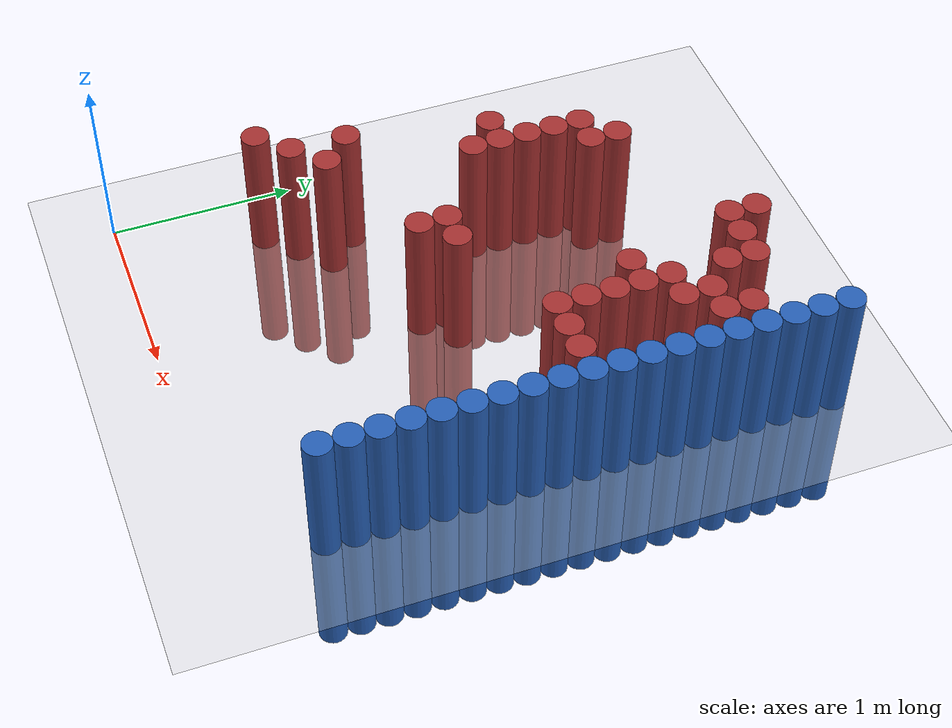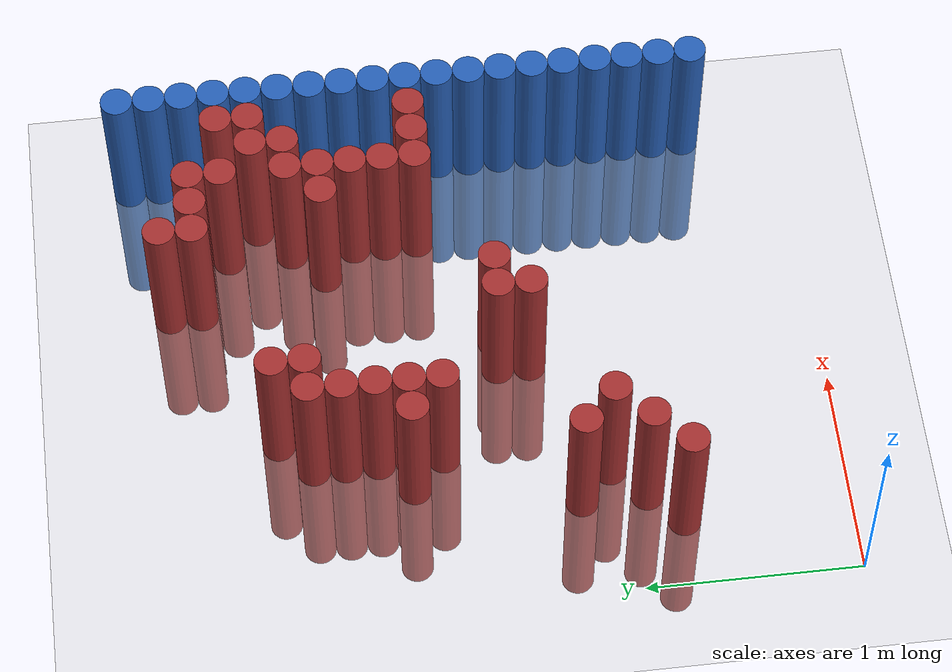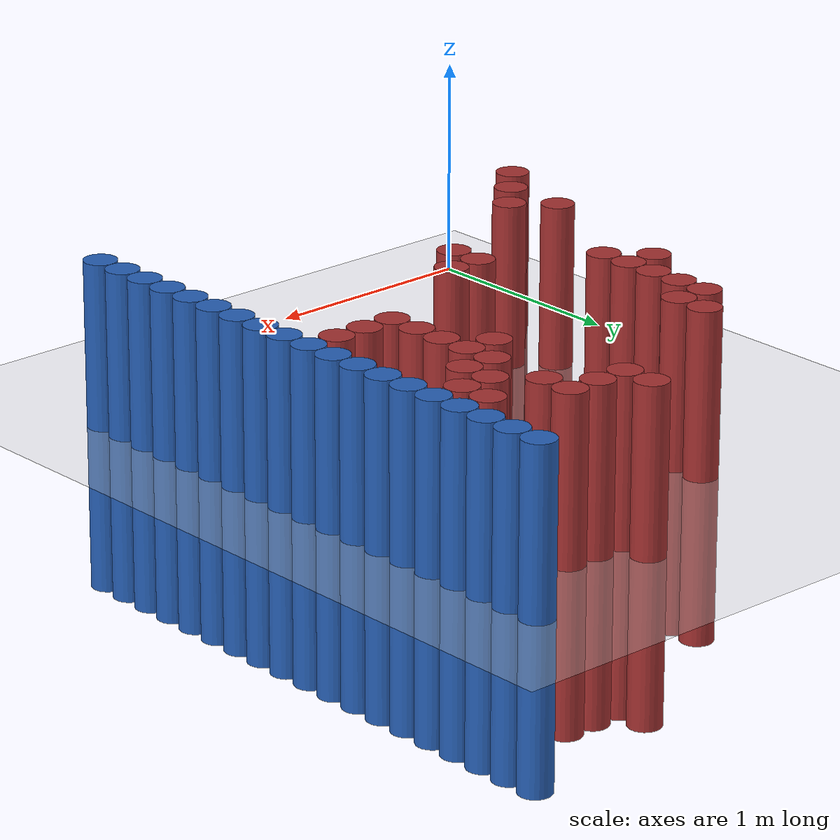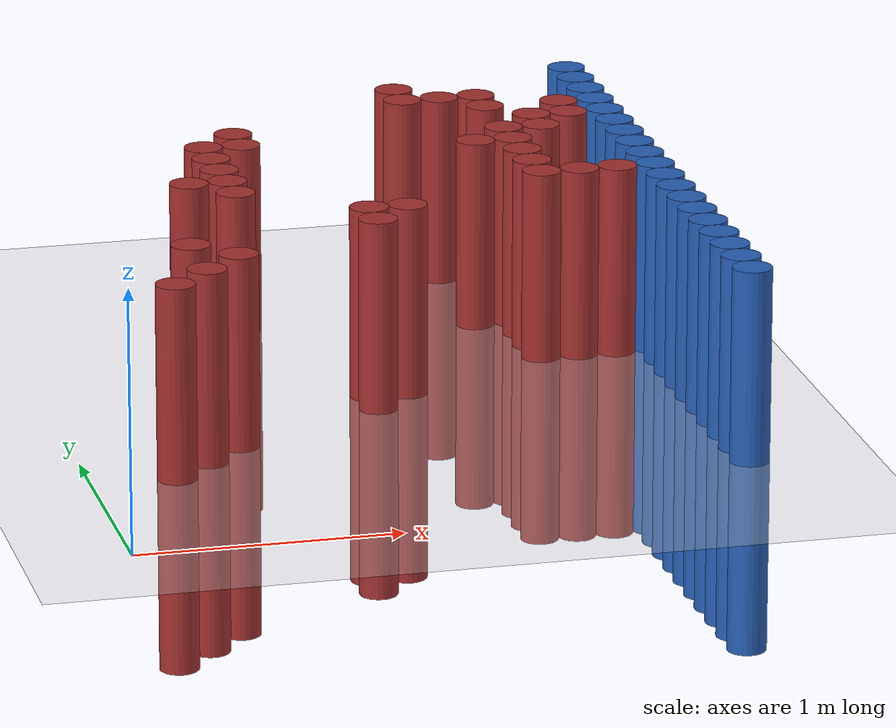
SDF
<sdf version="1.6">
 <world name="default">
  <model name="ground_plane">
   <static>1</static>
   <link name="link">
    <collision name="collision">
     <geometry><plane><normal>0 0 1</normal><size>100 100</size></plane></geometry>
     <surface><friction><ode><mu>100</mu><mu2>50</mu2></ode></friction></surface>
    </collision>
    <visual name="visual">
     <cast_shadows>0</cast_shadows>
     <geometry><plane><normal>0 0 1</normal><size>100 100</size></plane></geometry>
     <material>
      <script><uri>file://media/materials/scripts/gazebo.material</uri><name>Gazebo/Grey</name></script>
     </material>
    </visual>
   </link>
  </model>
  <model name="unit_cylinder_155">
   <static>1</static>
   <pose>0.325000 0.775000 0.000000 0.000000 0.000000 0.000000</pose>
   <link name="link">
    <inertial>
     <mass>1</mass>
     <inertia><ixx>0.145833</ixx><ixy>0</ixy><ixz>0</ixz><iyy>0.145833</iyy><iyz>0</iyz><izz>0.125</izz></inertia>
    </inertial>
    <collision name="collision">
     <geometry><cylinder><radius>0.075000</radius><length>1.5</length></cylinder></geometry>
    </collision>
    <visual name="visual">
     <geometry><cylinder><radius>0.075000</radius><length>1.5</length></cylinder></geometry>
     <material>
      <ambient>0.648000 0.192000 0.192000 1</ambient>
      <diffuse>0.648000 0.192000 0.192000 1</diffuse>
     </material>
     <material>
      <script><name>Gazebo/Grey</name><uri>file://media/materials/scripts/gazebo.material</uri></script>
     </material>
    </visual>
   </link>
  </model>
  <model name="unit_cylinder_163">
   <static>1</static>
   <pose>0.475000 0.925000 0.000000 0.000000 0.000000 0.000000</pose>
   <link name="link">
    <inertial>
     <mass>1</mass>
     <inertia><ixx>0.145833</ixx><ixy>0</ixy><ixz>0</ixz><iyy>0.145833</iyy><iyz>0</iyz><izz>0.125</izz></inertia>
    </inertial>
    <collision name="collision">
     <geometry><cylinder><radius>0.075000</radius><length>1.5</length></cylinder></geometry>
    </collision>
    <visual name="visual">
     <geometry><cylinder><radius>0.075000</radius><length>1.5</length></cylinder></geometry>
     <material>
      <ambient>0.648000 0.192000 0.192000 1</ambient>
      <diffuse>0.648000 0.192000 0.192000 1</diffuse>
     </material>
     <material>
      <script><name>Gazebo/Grey</name><uri>file://media/materials/scripts/gazebo.material</uri></script>
     </material>
    </visual>
   </link>
  </model>
  <model name="unit_cylinder_164">
   <static>1</static>
   <pose>0.475000 1.225000 0.000000 0.000000 0.000000 0.000000</pose>
   <link name="link">
    <inertial>
     <mass>1</mass>
     <inertia><ixx>0.145833</ixx><ixy>0</ixy><ixz>0</ixz><iyy>0.145833</iyy><iyz>0</iyz><izz>0.125</izz></inertia>
    </inertial>
    <collision name="collision">
     <geometry><cylinder><radius>0.075000</radius><length>1.5</length></cylinder></geometry>
    </collision>
    <visual name="visual">
     <geometry><cylinder><radius>0.075000</radius><length>1.5</length></cylinder></geometry>
     <material>
      <ambient>0.648000 0.192000 0.192000 1</ambient>
      <diffuse>0.648000 0.192000 0.192000 1</diffuse>
     </material>
     <material>
      <script><name>Gazebo/Grey</name><uri>file://media/materials/scripts/gazebo.material</uri></script>
     </material>
    </visual>
   </link>
  </model>
  <model name="unit_cylinder_170">
   <static>1</static>
   <pose>0.625000 1.075000 0.000000 0.000000 0.000000 0.000000</pose>
   <link name="link">
    <inertial>
     <mass>1</mass>
     <inertia><ixx>0.145833</ixx><ixy>0</ixy><ixz>0</ixz><iyy>0.145833</iyy><iyz>0</iyz><izz>0.125</izz></inertia>
    </inertial>
    <collision name="collision">
     <geometry><cylinder><radius>0.075000</radius><length>1.5</length></cylinder></geometry>
    </collision>
    <visual name="visual">
     <geometry><cylinder><radius>0.075000</radius><length>1.5</length></cylinder></geometry>
     <material>
      <ambient>0.648000 0.192000 0.192000 1</ambient>
      <diffuse>0.648000 0.192000 0.192000 1</diffuse>
     </material>
     <material>
      <script><name>Gazebo/Grey</name><uri>file://media/materials/scripts/gazebo.material</uri></script>
     </material>
    </visual>
   </link>
  </model>
  <model name="unit_cylinder_171">
   <static>1</static>
   <pose>0.625000 1.975000 0.000000 0.000000 0.000000 0.000000</pose>
   <link name="link">
    <inertial>
     <mass>1</mass>
     <inertia><ixx>0.145833</ixx><ixy>0</ixy><ixz>0</ixz><iyy>0.145833</iyy><iyz>0</iyz><izz>0.125</izz></inertia>
    </inertial>
    <collision name="collision">
     <geometry><cylinder><radius>0.075000</radius><length>1.5</length></cylinder></geometry>
    </collision>
    <visual name="visual">
     <geometry><cylinder><radius>0.075000</radius><length>1.5</length></cylinder></geometry>
     <material>
      <ambient>0.648000 0.192000 0.192000 1</ambient>
      <diffuse>0.648000 0.192000 0.192000 1</diffuse>
     </material>
     <material>
      <script><name>Gazebo/Grey</name><uri>file://media/materials/scripts/gazebo.material</uri></script>
     </material>
    </visual>
   </link>
  </model>
  <model name="unit_cylinder_176">
   <static>1</static>
   <pose>0.775000 1.825000 0.000000 0.000000 0.000000 0.000000</pose>
   <link name="link">
    <inertial>
     <mass>1</mass>
     <inertia><ixx>0.145833</ixx><ixy>0</ixy><ixz>0</ixz><iyy>0.145833</iyy><iyz>0</iyz><izz>0.125</izz></inertia>
    </inertial>
    <collision name="collision">
     <geometry><cylinder><radius>0.075000</radius><length>1.5</length></cylinder></geometry>
    </collision>
    <visual name="visual">
     <geometry><cylinder><radius>0.075000</radius><length>1.5</length></cylinder></geometry>
     <material>
      <ambient>0.648000 0.192000 0.192000 1</ambient>
      <diffuse>0.648000 0.192000 0.192000 1</diffuse>
     </material>
     <material>
      <script><name>Gazebo/Grey</name><uri>file://media/materials/scripts/gazebo.material</uri></script>
     </material>
    </visual>
   </link>
  </model>
  <model name="unit_cylinder_177">
   <static>1</static>
   <pose>0.775000 1.975000 0.000000 0.000000 0.000000 0.000000</pose>
   <link name="link">
    <inertial>
     <mass>1</mass>
     <inertia><ixx>0.145833</ixx><ixy>0</ixy><ixz>0</ixz><iyy>0.145833</iyy><iyz>0</iyz><izz>0.125</izz></inertia>
    </inertial>
    <collision name="collision">
     <geometry><cylinder><radius>0.075000</radius><length>1.5</length></cylinder></geometry>
    </collision>
    <visual name="visual">
     <geometry><cylinder><radius>0.075000</radius><length>1.5</length></cylinder></geometry>
     <material>
      <ambient>0.648000 0.192000 0.192000 1</ambient>
      <diffuse>0.648000 0.192000 0.192000 1</diffuse>
     </material>
     <material>
      <script><name>Gazebo/Grey</name><uri>file://media/materials/scripts/gazebo.material</uri></script>
     </material>
    </visual>
   </link>
  </model>
  <model name="unit_cylinder_178">
   <static>1</static>
   <pose>0.775000 2.125000 0.000000 0.000000 0.000000 0.000000</pose>
   <link name="link">
    <inertial>
     <mass>1</mass>
     <inertia><ixx>0.145833</ixx><ixy>0</ixy><ixz>0</ixz><iyy>0.145833</iyy><iyz>0</iyz><izz>0.125</izz></inertia>
    </inertial>
    <collision name="collision">
     <geometry><cylinder><radius>0.075000</radius><length>1.5</length></cylinder></geometry>
    </collision>
    <visual name="visual">
     <geometry><cylinder><radius>0.075000</radius><length>1.5</length></cylinder></geometry>
     <material>
      <ambient>0.648000 0.192000 0.192000 1</ambient>
      <diffuse>0.648000 0.192000 0.192000 1</diffuse>
     </material>
     <material>
      <script><name>Gazebo/Grey</name><uri>file://media/materials/scripts/gazebo.material</uri></script>
     </material>
    </visual>
   </link>
  </model>
  <model name="unit_cylinder_179">
   <static>1</static>
   <pose>0.775000 2.275000 0.000000 0.000000 0.000000 0.000000</pose>
   <link name="link">
    <inertial>
     <mass>1</mass>
     <inertia><ixx>0.145833</ixx><ixy>0</ixy><ixz>0</ixz><iyy>0.145833</iyy><iyz>0</iyz><izz>0.125</izz></inertia>
    </inertial>
    <collision name="collision">
     <geometry><cylinder><radius>0.075000</radius><length>1.5</length></cylinder></geometry>
    </collision>
    <visual name="visual">
     <geometry><cylinder><radius>0.075000</radius><length>1.5</length></cylinder></geometry>
     <material>
      <ambient>0.648000 0.192000 0.192000 1</ambient>
      <diffuse>0.648000 0.192000 0.192000 1</diffuse>
     </material>
     <material>
      <script><name>Gazebo/Grey</name><uri>file://media/materials/scripts/gazebo.material</uri></script>
     </material>
    </visual>
   </link>
  </model>
  <model name="unit_cylinder_180">
   <static>1</static>
   <pose>0.775000 2.425000 0.000000 0.000000 0.000000 0.000000</pose>
   <link name="link">
    <inertial>
     <mass>1</mass>
     <inertia><ixx>0.145833</ixx><ixy>0</ixy><ixz>0</ixz><iyy>0.145833</iyy><iyz>0</iyz><izz>0.125</izz></inertia>
    </inertial>
    <collision name="collision">
     <geometry><cylinder><radius>0.075000</radius><length>1.5</length></cylinder></geometry>
    </collision>
    <visual name="visual">
     <geometry><cylinder><radius>0.075000</radius><length>1.5</length></cylinder></geometry>
     <material>
      <ambient>0.648000 0.192000 0.192000 1</ambient>
      <diffuse>0.648000 0.192000 0.192000 1</diffuse>
     </material>
     <material>
      <script><name>Gazebo/Grey</name><uri>file://media/materials/scripts/gazebo.material</uri></script>
     </material>
    </visual>
   </link>
  </model>
  <model name="unit_cylinder_187">
   <static>1</static>
   <pose>0.925000 2.425000 0.000000 0.000000 0.000000 0.000000</pose>
   <link name="link">
    <inertial>
     <mass>1</mass>
     <inertia><ixx>0.145833</ixx><ixy>0</ixy><ixz>0</ixz><iyy>0.145833</iyy><iyz>0</iyz><izz>0.125</izz></inertia>
    </inertial>
    <collision name="collision">
     <geometry><cylinder><radius>0.075000</radius><length>1.5</length></cylinder></geometry>
    </collision>
    <visual name="visual">
     <geometry><cylinder><radius>0.075000</radius><length>1.5</length></cylinder></geometry>
     <material>
      <ambient>0.648000 0.192000 0.192000 1</ambient>
      <diffuse>0.648000 0.192000 0.192000 1</diffuse>
     </material>
     <material>
      <script><name>Gazebo/Grey</name><uri>file://media/materials/scripts/gazebo.material</uri></script>
     </material>
    </visual>
   </link>
  </model>
  <model name="unit_cylinder_188">
   <static>1</static>
   <pose>0.925000 2.575000 0.000000 0.000000 0.000000 0.000000</pose>
   <link name="link">
    <inertial>
     <mass>1</mass>
     <inertia><ixx>0.145833</ixx><ixy>0</ixy><ixz>0</ixz><iyy>0.145833</iyy><iyz>0</iyz><izz>0.125</izz></inertia>
    </inertial>
    <collision name="collision">
     <geometry><cylinder><radius>0.075000</radius><length>1.5</length></cylinder></geometry>
    </collision>
    <visual name="visual">
     <geometry><cylinder><radius>0.075000</radius><length>1.5</length></cylinder></geometry>
     <material>
      <ambient>0.648000 0.192000 0.192000 1</ambient>
      <diffuse>0.648000 0.192000 0.192000 1</diffuse>
     </material>
     <material>
      <script><name>Gazebo/Grey</name><uri>file://media/materials/scripts/gazebo.material</uri></script>
     </material>
    </visual>
   </link>
  </model>
  <model name="unit_cylinder_192">
   <static>1</static>
   <pose>1.225000 1.375000 0.000000 0.000000 0.000000 0.000000</pose>
   <link name="link">
    <inertial>
     <mass>1</mass>
     <inertia><ixx>0.145833</ixx><ixy>0</ixy><ixz>0</ixz><iyy>0.145833</iyy><iyz>0</iyz><izz>0.125</izz></inertia>
    </inertial>
    <collision name="collision">
     <geometry><cylinder><radius>0.075000</radius><length>1.5</length></cylinder></geometry>
    </collision>
    <visual name="visual">
     <geometry><cylinder><radius>0.075000</radius><length>1.5</length></cylinder></geometry>
     <material>
      <ambient>0.648000 0.192000 0.192000 1</ambient>
      <diffuse>0.648000 0.192000 0.192000 1</diffuse>
     </material>
     <material>
      <script><name>Gazebo/Grey</name><uri>file://media/materials/scripts/gazebo.material</uri></script>
     </material>
    </visual>
   </link>
  </model>
  <model name="unit_cylinder_193">
   <static>1</static>
   <pose>1.225000 1.525000 0.000000 0.000000 0.000000 0.000000</pose>
   <link name="link">
    <inertial>
     <mass>1</mass>
     <inertia><ixx>0.145833</ixx><ixy>0</ixy><ixz>0</ixz><iyy>0.145833</iyy><iyz>0</iyz><izz>0.125</izz></inertia>
    </inertial>
    <collision name="collision">
     <geometry><cylinder><radius>0.075000</radius><length>1.5</length></cylinder></geometry>
    </collision>
    <visual name="visual">
     <geometry><cylinder><radius>0.075000</radius><length>1.5</length></cylinder></geometry>
     <material>
      <ambient>0.648000 0.192000 0.192000 1</ambient>
      <diffuse>0.648000 0.192000 0.192000 1</diffuse>
     </material>
     <material>
      <script><name>Gazebo/Grey</name><uri>file://media/materials/scripts/gazebo.material</uri></script>
     </material>
    </visual>
   </link>
  </model>
  <model name="unit_cylinder_197">
   <static>1</static>
   <pose>1.375000 1.525000 0.000000 0.000000 0.000000 0.000000</pose>
   <link name="link">
    <inertial>
     <mass>1</mass>
     <inertia><ixx>0.145833</ixx><ixy>0</ixy><ixz>0</ixz><iyy>0.145833</iyy><iyz>0</iyz><izz>0.125</izz></inertia>
    </inertial>
    <collision name="collision">
     <geometry><cylinder><radius>0.075000</radius><length>1.5</length></cylinder></geometry>
    </collision>
    <visual name="visual">
     <geometry><cylinder><radius>0.075000</radius><length>1.5</length></cylinder></geometry>
     <material>
      <ambient>0.648000 0.192000 0.192000 1</ambient>
      <diffuse>0.648000 0.192000 0.192000 1</diffuse>
     </material>
     <material>
      <script><name>Gazebo/Grey</name><uri>file://media/materials/scripts/gazebo.material</uri></script>
     </material>
    </visual>
   </link>
  </model>
  <model name="unit_cylinder_205">
   <static>1</static>
   <pose>1.675000 2.875000 0.000000 0.000000 0.000000 0.000000</pose>
   <link name="link">
    <inertial>
     <mass>1</mass>
     <inertia><ixx>0.145833</ixx><ixy>0</ixy><ixz>0</ixz><iyy>0.145833</iyy><iyz>0</iyz><izz>0.125</izz></inertia>
    </inertial>
    <collision name="collision">
     <geometry><cylinder><radius>0.075000</radius><length>1.5</length></cylinder></geometry>
    </collision>
    <visual name="visual">
     <geometry><cylinder><radius>0.075000</radius><length>1.5</length></cylinder></geometry>
     <material>
      <ambient>0.648000 0.192000 0.192000 1</ambient>
      <diffuse>0.648000 0.192000 0.192000 1</diffuse>
     </material>
     <material>
      <script><name>Gazebo/Grey</name><uri>file://media/materials/scripts/gazebo.material</uri></script>
     </material>
    </visual>
   </link>
  </model>
  <model name="unit_cylinder_206">
   <static>1</static>
   <pose>1.675000 3.025000 0.000000 0.000000 0.000000 0.000000</pose>
   <link name="link">
    <inertial>
     <mass>1</mass>
     <inertia><ixx>0.145833</ixx><ixy>0</ixy><ixz>0</ixz><iyy>0.145833</iyy><iyz>0</iyz><izz>0.125</izz></inertia>
    </inertial>
    <collision name="collision">
     <geometry><cylinder><radius>0.075000</radius><length>1.5</length></cylinder></geometry>
    </collision>
    <visual name="visual">
     <geometry><cylinder><radius>0.075000</radius><length>1.5</length></cylinder></geometry>
     <material>
      <ambient>0.648000 0.192000 0.192000 1</ambient>
      <diffuse>0.648000 0.192000 0.192000 1</diffuse>
     </material>
     <material>
      <script><name>Gazebo/Grey</name><uri>file://media/materials/scripts/gazebo.material</uri></script>
     </material>
    </visual>
   </link>
  </model>
  <model name="unit_cylinder_207">
   <static>1</static>
   <pose>1.825000 2.275000 0.000000 0.000000 0.000000 0.000000</pose>
   <link name="link">
    <inertial>
     <mass>1</mass>
     <inertia><ixx>0.145833</ixx><ixy>0</ixy><ixz>0</ixz><iyy>0.145833</iyy><iyz>0</iyz><izz>0.125</izz></inertia>
    </inertial>
    <collision name="collision">
     <geometry><cylinder><radius>0.075000</radius><length>1.5</length></cylinder></geometry>
    </collision>
    <visual name="visual">
     <geometry><cylinder><radius>0.075000</radius><length>1.5</length></cylinder></geometry>
     <material>
      <ambient>0.648000 0.192000 0.192000 1</ambient>
      <diffuse>0.648000 0.192000 0.192000 1</diffuse>
     </material>
     <material>
      <script><name>Gazebo/Grey</name><uri>file://media/materials/scripts/gazebo.material</uri></script>
     </material>
    </visual>
   </link>
  </model>
  <model name="unit_cylinder_208">
   <static>1</static>
   <pose>1.825000 2.875000 0.000000 0.000000 0.000000 0.000000</pose>
   <link name="link">
    <inertial>
     <mass>1</mass>
     <inertia><ixx>0.145833</ixx><ixy>0</ixy><ixz>0</ixz><iyy>0.145833</iyy><iyz>0</iyz><izz>0.125</izz></inertia>
    </inertial>
    <collision name="collision">
     <geometry><cylinder><radius>0.075000</radius><length>1.5</length></cylinder></geometry>
    </collision>
    <visual name="visual">
     <geometry><cylinder><radius>0.075000</radius><length>1.5</length></cylinder></geometry>
     <material>
      <ambient>0.648000 0.192000 0.192000 1</ambient>
      <diffuse>0.648000 0.192000 0.192000 1</diffuse>
     </material>
     <material>
      <script><name>Gazebo/Grey</name><uri>file://media/materials/scripts/gazebo.material</uri></script>
     </material>
    </visual>
   </link>
  </model>
  <model name="unit_cylinder_209">
   <static>1</static>
   <pose>1.975000 1.825000 0.000000 0.000000 0.000000 0.000000</pose>
   <link name="link">
    <inertial>
     <mass>1</mass>
     <inertia><ixx>0.145833</ixx><ixy>0</ixy><ixz>0</ixz><iyy>0.145833</iyy><iyz>0</iyz><izz>0.125</izz></inertia>
    </inertial>
    <collision name="collision">
     <geometry><cylinder><radius>0.075000</radius><length>1.5</length></cylinder></geometry>
    </collision>
    <visual name="visual">
     <geometry><cylinder><radius>0.075000</radius><length>1.5</length></cylinder></geometry>
     <material>
      <ambient>0.648000 0.192000 0.192000 1</ambient>
      <diffuse>0.648000 0.192000 0.192000 1</diffuse>
     </material>
     <material>
      <script><name>Gazebo/Grey</name><uri>file://media/materials/scripts/gazebo.material</uri></script>
     </material>
    </visual>
   </link>
  </model>
  <model name="unit_cylinder_210">
   <static>1</static>
   <pose>1.975000 1.975000 0.000000 0.000000 0.000000 0.000000</pose>
   <link name="link">
    <inertial>
     <mass>1</mass>
     <inertia><ixx>0.145833</ixx><ixy>0</ixy><ixz>0</ixz><iyy>0.145833</iyy><iyz>0</iyz><izz>0.125</izz></inertia>
    </inertial>
    <collision name="collision">
     <geometry><cylinder><radius>0.075000</radius><length>1.5</length></cylinder></geometry>
    </collision>
    <visual name="visual">
     <geometry><cylinder><radius>0.075000</radius><length>1.5</length></cylinder></geometry>
     <material>
      <ambient>0.648000 0.192000 0.192000 1</ambient>
      <diffuse>0.648000 0.192000 0.192000 1</diffuse>
     </material>
     <material>
      <script><name>Gazebo/Grey</name><uri>file://media/materials/scripts/gazebo.material</uri></script>
     </material>
    </visual>
   </link>
  </model>
  <model name="unit_cylinder_211">
   <static>1</static>
   <pose>1.975000 2.125000 0.000000 0.000000 0.000000 0.000000</pose>
   <link name="link">
    <inertial>
     <mass>1</mass>
     <inertia><ixx>0.145833</ixx><ixy>0</ixy><ixz>0</ixz><iyy>0.145833</iyy><iyz>0</iyz><izz>0.125</izz></inertia>
    </inertial>
    <collision name="collision">
     <geometry><cylinder><radius>0.075000</radius><length>1.5</length></cylinder></geometry>
    </collision>
    <visual name="visual">
     <geometry><cylinder><radius>0.075000</radius><length>1.5</length></cylinder></geometry>
     <material>
      <ambient>0.648000 0.192000 0.192000 1</ambient>
      <diffuse>0.648000 0.192000 0.192000 1</diffuse>
     </material>
     <material>
      <script><name>Gazebo/Grey</name><uri>file://media/materials/scripts/gazebo.material</uri></script>
     </material>
    </visual>
   </link>
  </model>
  <model name="unit_cylinder_212">
   <static>1</static>
   <pose>1.975000 2.275000 0.000000 0.000000 0.000000 0.000000</pose>
   <link name="link">
    <inertial>
     <mass>1</mass>
     <inertia><ixx>0.145833</ixx><ixy>0</ixy><ixz>0</ixz><iyy>0.145833</iyy><iyz>0</iyz><izz>0.125</izz></inertia>
    </inertial>
    <collision name="collision">
     <geometry><cylinder><radius>0.075000</radius><length>1.5</length></cylinder></geometry>
    </collision>
    <visual name="visual">
     <geometry><cylinder><radius>0.075000</radius><length>1.5</length></cylinder></geometry>
     <material>
      <ambient>0.648000 0.192000 0.192000 1</ambient>
      <diffuse>0.648000 0.192000 0.192000 1</diffuse>
     </material>
     <material>
      <script><name>Gazebo/Grey</name><uri>file://media/materials/scripts/gazebo.material</uri></script>
     </material>
    </visual>
   </link>
  </model>
  <model name="unit_cylinder_213">
   <static>1</static>
   <pose>1.975000 2.425000 0.000000 0.000000 0.000000 0.000000</pose>
   <link name="link">
    <inertial>
     <mass>1</mass>
     <inertia><ixx>0.145833</ixx><ixy>0</ixy><ixz>0</ixz><iyy>0.145833</iyy><iyz>0</iyz><izz>0.125</izz></inertia>
    </inertial>
    <collision name="collision">
     <geometry><cylinder><radius>0.075000</radius><length>1.5</length></cylinder></geometry>
    </collision>
    <visual name="visual">
     <geometry><cylinder><radius>0.075000</radius><length>1.5</length></cylinder></geometry>
     <material>
      <ambient>0.648000 0.192000 0.192000 1</ambient>
      <diffuse>0.648000 0.192000 0.192000 1</diffuse>
     </material>
     <material>
      <script><name>Gazebo/Grey</name><uri>file://media/materials/scripts/gazebo.material</uri></script>
     </material>
    </visual>
   </link>
  </model>
  <model name="unit_cylinder_214">
   <static>1</static>
   <pose>1.975000 2.725000 0.000000 0.000000 0.000000 0.000000</pose>
   <link name="link">
    <inertial>
     <mass>1</mass>
     <inertia><ixx>0.145833</ixx><ixy>0</ixy><ixz>0</ixz><iyy>0.145833</iyy><iyz>0</iyz><izz>0.125</izz></inertia>
    </inertial>
    <collision name="collision">
     <geometry><cylinder><radius>0.075000</radius><length>1.5</length></cylinder></geometry>
    </collision>
    <visual name="visual">
     <geometry><cylinder><radius>0.075000</radius><length>1.5</length></cylinder></geometry>
     <material>
      <ambient>0.648000 0.192000 0.192000 1</ambient>
      <diffuse>0.648000 0.192000 0.192000 1</diffuse>
     </material>
     <material>
      <script><name>Gazebo/Grey</name><uri>file://media/materials/scripts/gazebo.material</uri></script>
     </material>
    </visual>
   </link>
  </model>
  <model name="unit_cylinder_215">
   <static>1</static>
   <pose>1.975000 2.875000 0.000000 0.000000 0.000000 0.000000</pose>
   <link name="link">
    <inertial>
     <mass>1</mass>
     <inertia><ixx>0.145833</ixx><ixy>0</ixy><ixz>0</ixz><iyy>0.145833</iyy><iyz>0</iyz><izz>0.125</izz></inertia>
    </inertial>
    <collision name="collision">
     <geometry><cylinder><radius>0.075000</radius><length>1.5</length></cylinder></geometry>
    </collision>
    <visual name="visual">
     <geometry><cylinder><radius>0.075000</radius><length>1.5</length></cylinder></geometry>
     <material>
      <ambient>0.648000 0.192000 0.192000 1</ambient>
      <diffuse>0.648000 0.192000 0.192000 1</diffuse>
     </material>
     <material>
      <script><name>Gazebo/Grey</name><uri>file://media/materials/scripts/gazebo.material</uri></script>
     </material>
    </visual>
   </link>
  </model>
  <model name="unit_cylinder_216">
   <static>1</static>
   <pose>2.125000 1.825000 0.000000 0.000000 0.000000 0.000000</pose>
   <link name="link">
    <inertial>
     <mass>1</mass>
     <inertia><ixx>0.145833</ixx><ixy>0</ixy><ixz>0</ixz><iyy>0.145833</iyy><iyz>0</iyz><izz>0.125</izz></inertia>
    </inertial>
    <collision name="collision">
     <geometry><cylinder><radius>0.075000</radius><length>1.5</length></cylinder></geometry>
    </collision>
    <visual name="visual">
     <geometry><cylinder><radius>0.075000</radius><length>1.5</length></cylinder></geometry>
     <material>
      <ambient>0.648000 0.192000 0.192000 1</ambient>
      <diffuse>0.648000 0.192000 0.192000 1</diffuse>
     </material>
     <material>
      <script><name>Gazebo/Grey</name><uri>file://media/materials/scripts/gazebo.material</uri></script>
     </material>
    </visual>
   </link>
  </model>
  <model name="unit_cylinder_217">
   <static>1</static>
   <pose>2.125000 2.425000 0.000000 0.000000 0.000000 0.000000</pose>
   <link name="link">
    <inertial>
     <mass>1</mass>
     <inertia><ixx>0.145833</ixx><ixy>0</ixy><ixz>0</ixz><iyy>0.145833</iyy><iyz>0</iyz><izz>0.125</izz></inertia>
    </inertial>
    <collision name="collision">
     <geometry><cylinder><radius>0.075000</radius><length>1.5</length></cylinder></geometry>
    </collision>
    <visual name="visual">
     <geometry><cylinder><radius>0.075000</radius><length>1.5</length></cylinder></geometry>
     <material>
      <ambient>0.648000 0.192000 0.192000 1</ambient>
      <diffuse>0.648000 0.192000 0.192000 1</diffuse>
     </material>
     <material>
      <script><name>Gazebo/Grey</name><uri>file://media/materials/scripts/gazebo.material</uri></script>
     </material>
    </visual>
   </link>
  </model>
  <model name="unit_cylinder_218">
   <static>1</static>
   <pose>2.125000 2.575000 0.000000 0.000000 0.000000 0.000000</pose>
   <link name="link">
    <inertial>
     <mass>1</mass>
     <inertia><ixx>0.145833</ixx><ixy>0</ixy><ixz>0</ixz><iyy>0.145833</iyy><iyz>0</iyz><izz>0.125</izz></inertia>
    </inertial>
    <collision name="collision">
     <geometry><cylinder><radius>0.075000</radius><length>1.5</length></cylinder></geometry>
    </collision>
    <visual name="visual">
     <geometry><cylinder><radius>0.075000</radius><length>1.5</length></cylinder></geometry>
     <material>
      <ambient>0.648000 0.192000 0.192000 1</ambient>
      <diffuse>0.648000 0.192000 0.192000 1</diffuse>
     </material>
     <material>
      <script><name>Gazebo/Grey</name><uri>file://media/materials/scripts/gazebo.material</uri></script>
     </material>
    </visual>
   </link>
  </model>
  <model name="unit_cylinder_221">
   <static>1</static>
   <pose>2.275000 1.825000 0.000000 0.000000 0.000000 0.000000</pose>
   <link name="link">
    <inertial>
     <mass>1</mass>
     <inertia><ixx>0.145833</ixx><ixy>0</ixy><ixz>0</ixz><iyy>0.145833</iyy><iyz>0</iyz><izz>0.125</izz></inertia>
    </inertial>
    <collision name="collision">
     <geometry><cylinder><radius>0.075000</radius><length>1.5</length></cylinder></geometry>
    </collision>
    <visual name="visual">
     <geometry><cylinder><radius>0.075000</radius><length>1.5</length></cylinder></geometry>
     <material>
      <ambient>0.648000 0.192000 0.192000 1</ambient>
      <diffuse>0.648000 0.192000 0.192000 1</diffuse>
     </material>
     <material>
      <script><name>Gazebo/Grey</name><uri>file://media/materials/scripts/gazebo.material</uri></script>
     </material>
    </visual>
   </link>
  </model>
  <model name="unit_cylinder_222">
   <static>1</static>
   <pose>2.275000 2.575000 0.000000 0.000000 0.000000 0.000000</pose>
   <link name="link">
    <inertial>
     <mass>1</mass>
     <inertia><ixx>0.145833</ixx><ixy>0</ixy><ixz>0</ixz><iyy>0.145833</iyy><iyz>0</iyz><izz>0.125</izz></inertia>
    </inertial>
    <collision name="collision">
     <geometry><cylinder><radius>0.075000</radius><length>1.5</length></cylinder></geometry>
    </collision>
    <visual name="visual">
     <geometry><cylinder><radius>0.075000</radius><length>1.5</length></cylinder></geometry>
     <material>
      <ambient>0.648000 0.192000 0.192000 1</ambient>
      <diffuse>0.648000 0.192000 0.192000 1</diffuse>
     </material>
     <material>
      <script><name>Gazebo/Grey</name><uri>file://media/materials/scripts/gazebo.material</uri></script>
     </material>
    </visual>
   </link>
  </model>
  <model name="unit_cylinder_223">
   <static>1</static>
   <pose>2.275000 2.725000 0.000000 0.000000 0.000000 0.000000</pose>
   <link name="link">
    <inertial>
     <mass>1</mass>
     <inertia><ixx>0.145833</ixx><ixy>0</ixy><ixz>0</ixz><iyy>0.145833</iyy><iyz>0</iyz><izz>0.125</izz></inertia>
    </inertial>
    <collision name="collision">
     <geometry><cylinder><radius>0.075000</radius><length>1.5</length></cylinder></geometry>
    </collision>
    <visual name="visual">
     <geometry><cylinder><radius>0.075000</radius><length>1.5</length></cylinder></geometry>
     <material>
      <ambient>0.648000 0.192000 0.192000 1</ambient>
      <diffuse>0.648000 0.192000 0.192000 1</diffuse>
     </material>
     <material>
      <script><name>Gazebo/Grey</name><uri>file://media/materials/scripts/gazebo.material</uri></script>
     </material>
    </visual>
   </link>
  </model>
  <model name="unit_cylinder_230">
   <static>1</static>
   <pose>2.425000 0.475000 0.000000 0.000000 0.000000 0.000000</pose>
   <link name="link">
    <inertial>
     <mass>1</mass>
     <inertia><ixx>0.145833</ixx><ixy>0</ixy><ixz>0</ixz><iyy>0.145833</iyy><iyz>0</iyz><izz>0.125</izz></inertia>
    </inertial>
    <collision name="collision">
     <geometry><cylinder><radius>0.075000</radius><length>1.5</length></cylinder></geometry>
    </collision>
    <visual name="visual">
     <geometry><cylinder><radius>0.075000</radius><length>1.5</length></cylinder></geometry>
     <material>
      <ambient>0.152000 0.379000 0.720000 1</ambient>
      <diffuse>0.152000 0.379000 0.720000 1</diffuse>
     </material>
     <material>
      <script><name>Gazebo/Grey</name><uri>file://media/materials/scripts/gazebo.material</uri></script>
     </material>
    </visual>
   </link>
  </model>
  <model name="unit_cylinder_231">
   <static>1</static>
   <pose>2.425000 0.625000 0.000000 0.000000 0.000000 0.000000</pose>
   <link name="link">
    <inertial>
     <mass>1</mass>
     <inertia><ixx>0.145833</ixx><ixy>0</ixy><ixz>0</ixz><iyy>0.145833</iyy><iyz>0</iyz><izz>0.125</izz></inertia>
    </inertial>
    <collision name="collision">
     <geometry><cylinder><radius>0.075000</radius><length>1.5</length></cylinder></geometry>
    </collision>
    <visual name="visual">
     <geometry><cylinder><radius>0.075000</radius><length>1.5</length></cylinder></geometry>
     <material>
      <ambient>0.152000 0.379000 0.720000 1</ambient>
      <diffuse>0.152000 0.379000 0.720000 1</diffuse>
     </material>
     <material>
      <script><name>Gazebo/Grey</name><uri>file://media/materials/scripts/gazebo.material</uri></script>
     </material>
    </visual>
   </link>
  </model>
  <model name="unit_cylinder_232">
   <static>1</static>
   <pose>2.425000 0.775000 0.000000 0.000000 0.000000 0.000000</pose>
   <link name="link">
    <inertial>
     <mass>1</mass>
     <inertia><ixx>0.145833</ixx><ixy>0</ixy><ixz>0</ixz><iyy>0.145833</iyy><iyz>0</iyz><izz>0.125</izz></inertia>
    </inertial>
    <collision name="collision">
     <geometry><cylinder><radius>0.075000</radius><length>1.5</length></cylinder></geometry>
    </collision>
    <visual name="visual">
     <geometry><cylinder><radius>0.075000</radius><length>1.5</length></cylinder></geometry>
     <material>
      <ambient>0.152000 0.379000 0.720000 1</ambient>
      <diffuse>0.152000 0.379000 0.720000 1</diffuse>
     </material>
     <material>
      <script><name>Gazebo/Grey</name><uri>file://media/materials/scripts/gazebo.material</uri></script>
     </material>
    </visual>
   </link>
  </model>
  <model name="unit_cylinder_233">
   <static>1</static>
   <pose>2.425000 0.925000 0.000000 0.000000 0.000000 0.000000</pose>
   <link name="link">
    <inertial>
     <mass>1</mass>
     <inertia><ixx>0.145833</ixx><ixy>0</ixy><ixz>0</ixz><iyy>0.145833</iyy><iyz>0</iyz><izz>0.125</izz></inertia>
    </inertial>
    <collision name="collision">
     <geometry><cylinder><radius>0.075000</radius><length>1.5</length></cylinder></geometry>
    </collision>
    <visual name="visual">
     <geometry><cylinder><radius>0.075000</radius><length>1.5</length></cylinder></geometry>
     <material>
      <ambient>0.152000 0.379000 0.720000 1</ambient>
      <diffuse>0.152000 0.379000 0.720000 1</diffuse>
     </material>
     <material>
      <script><name>Gazebo/Grey</name><uri>file://media/materials/scripts/gazebo.material</uri></script>
     </material>
    </visual>
   </link>
  </model>
  <model name="unit_cylinder_234">
   <static>1</static>
   <pose>2.425000 1.075000 0.000000 0.000000 0.000000 0.000000</pose>
   <link name="link">
    <inertial>
     <mass>1</mass>
     <inertia><ixx>0.145833</ixx><ixy>0</ixy><ixz>0</ixz><iyy>0.145833</iyy><iyz>0</iyz><izz>0.125</izz></inertia>
    </inertial>
    <collision name="collision">
     <geometry><cylinder><radius>0.075000</radius><length>1.5</length></cylinder></geometry>
    </collision>
    <visual name="visual">
     <geometry><cylinder><radius>0.075000</radius><length>1.5</length></cylinder></geometry>
     <material>
      <ambient>0.152000 0.379000 0.720000 1</ambient>
      <diffuse>0.152000 0.379000 0.720000 1</diffuse>
     </material>
     <material>
      <script><name>Gazebo/Grey</name><uri>file://media/materials/scripts/gazebo.material</uri></script>
     </material>
    </visual>
   </link>
  </model>
  <model name="unit_cylinder_235">
   <static>1</static>
   <pose>2.425000 1.225000 0.000000 0.000000 0.000000 0.000000</pose>
   <link name="link">
    <inertial>
     <mass>1</mass>
     <inertia><ixx>0.145833</ixx><ixy>0</ixy><ixz>0</ixz><iyy>0.145833</iyy><iyz>0</iyz><izz>0.125</izz></inertia>
    </inertial>
    <collision name="collision">
     <geometry><cylinder><radius>0.075000</radius><length>1.5</length></cylinder></geometry>
    </collision>
    <visual name="visual">
     <geometry><cylinder><radius>0.075000</radius><length>1.5</length></cylinder></geometry>
     <material>
      <ambient>0.152000 0.379000 0.720000 1</ambient>
      <diffuse>0.152000 0.379000 0.720000 1</diffuse>
     </material>
     <material>
      <script><name>Gazebo/Grey</name><uri>file://media/materials/scripts/gazebo.material</uri></script>
     </material>
    </visual>
   </link>
  </model>
  <model name="unit_cylinder_236">
   <static>1</static>
   <pose>2.425000 1.375000 0.000000 0.000000 0.000000 0.000000</pose>
   <link name="link">
    <inertial>
     <mass>1</mass>
     <inertia><ixx>0.145833</ixx><ixy>0</ixy><ixz>0</ixz><iyy>0.145833</iyy><iyz>0</iyz><izz>0.125</izz></inertia>
    </inertial>
    <collision name="collision">
     <geometry><cylinder><radius>0.075000</radius><length>1.5</length></cylinder></geometry>
    </collision>
    <visual name="visual">
     <geometry><cylinder><radius>0.075000</radius><length>1.5</length></cylinder></geometry>
     <material>
      <ambient>0.152000 0.379000 0.720000 1</ambient>
      <diffuse>0.152000 0.379000 0.720000 1</diffuse>
     </material>
     <material>
      <script><name>Gazebo/Grey</name><uri>file://media/materials/scripts/gazebo.material</uri></script>
     </material>
    </visual>
   </link>
  </model>
  <model name="unit_cylinder_237">
   <static>1</static>
   <pose>2.425000 1.525000 0.000000 0.000000 0.000000 0.000000</pose>
   <link name="link">
    <inertial>
     <mass>1</mass>
     <inertia><ixx>0.145833</ixx><ixy>0</ixy><ixz>0</ixz><iyy>0.145833</iyy><iyz>0</iyz><izz>0.125</izz></inertia>
    </inertial>
    <collision name="collision">
     <geometry><cylinder><radius>0.075000</radius><length>1.5</length></cylinder></geometry>
    </collision>
    <visual name="visual">
     <geometry><cylinder><radius>0.075000</radius><length>1.5</length></cylinder></geometry>
     <material>
      <ambient>0.152000 0.379000 0.720000 1</ambient>
      <diffuse>0.152000 0.379000 0.720000 1</diffuse>
     </material>
     <material>
      <script><name>Gazebo/Grey</name><uri>file://media/materials/scripts/gazebo.material</uri></script>
     </material>
    </visual>
   </link>
  </model>
  <model name="unit_cylinder_238">
   <static>1</static>
   <pose>2.425000 1.675000 0.000000 0.000000 0.000000 0.000000</pose>
   <link name="link">
    <inertial>
     <mass>1</mass>
     <inertia><ixx>0.145833</ixx><ixy>0</ixy><ixz>0</ixz><iyy>0.145833</iyy><iyz>0</iyz><izz>0.125</izz></inertia>
    </inertial>
    <collision name="collision">
     <geometry><cylinder><radius>0.075000</radius><length>1.5</length></cylinder></geometry>
    </collision>
    <visual name="visual">
     <geometry><cylinder><radius>0.075000</radius><length>1.5</length></cylinder></geometry>
     <material>
      <ambient>0.152000 0.379000 0.720000 1</ambient>
      <diffuse>0.152000 0.379000 0.720000 1</diffuse>
     </material>
     <material>
      <script><name>Gazebo/Grey</name><uri>file://media/materials/scripts/gazebo.material</uri></script>
     </material>
    </visual>
   </link>
  </model>
  <model name="unit_cylinder_239">
   <static>1</static>
   <pose>2.425000 1.825000 0.000000 0.000000 0.000000 0.000000</pose>
   <link name="link">
    <inertial>
     <mass>1</mass>
     <inertia><ixx>0.145833</ixx><ixy>0</ixy><ixz>0</ixz><iyy>0.145833</iyy><iyz>0</iyz><izz>0.125</izz></inertia>
    </inertial>
    <collision name="collision">
     <geometry><cylinder><radius>0.075000</radius><length>1.5</length></cylinder></geometry>
    </collision>
    <visual name="visual">
     <geometry><cylinder><radius>0.075000</radius><length>1.5</length></cylinder></geometry>
     <material>
      <ambient>0.152000 0.379000 0.720000 1</ambient>
      <diffuse>0.152000 0.379000 0.720000 1</diffuse>
     </material>
     <material>
      <script><name>Gazebo/Grey</name><uri>file://media/materials/scripts/gazebo.material</uri></script>
     </material>
    </visual>
   </link>
  </model>
  <model name="unit_cylinder_240">
   <static>1</static>
   <pose>2.425000 1.975000 0.000000 0.000000 0.000000 0.000000</pose>
   <link name="link">
    <inertial>
     <mass>1</mass>
     <inertia><ixx>0.145833</ixx><ixy>0</ixy><ixz>0</ixz><iyy>0.145833</iyy><iyz>0</iyz><izz>0.125</izz></inertia>
    </inertial>
    <collision name="collision">
     <geometry><cylinder><radius>0.075000</radius><length>1.5</length></cylinder></geometry>
    </collision>
    <visual name="visual">
     <geometry><cylinder><radius>0.075000</radius><length>1.5</length></cylinder></geometry>
     <material>
      <ambient>0.152000 0.379000 0.720000 1</ambient>
      <diffuse>0.152000 0.379000 0.720000 1</diffuse>
     </material>
     <material>
      <script><name>Gazebo/Grey</name><uri>file://media/materials/scripts/gazebo.material</uri></script>
     </material>
    </visual>
   </link>
  </model>
  <model name="unit_cylinder_241">
   <static>1</static>
   <pose>2.425000 2.125000 0.000000 0.000000 0.000000 0.000000</pose>
   <link name="link">
    <inertial>
     <mass>1</mass>
     <inertia><ixx>0.145833</ixx><ixy>0</ixy><ixz>0</ixz><iyy>0.145833</iyy><iyz>0</iyz><izz>0.125</izz></inertia>
    </inertial>
    <collision name="collision">
     <geometry><cylinder><radius>0.075000</radius><length>1.5</length></cylinder></geometry>
    </collision>
    <visual name="visual">
     <geometry><cylinder><radius>0.075000</radius><length>1.5</length></cylinder></geometry>
     <material>
      <ambient>0.152000 0.379000 0.720000 1</ambient>
      <diffuse>0.152000 0.379000 0.720000 1</diffuse>
     </material>
     <material>
      <script><name>Gazebo/Grey</name><uri>file://media/materials/scripts/gazebo.material</uri></script>
     </material>
    </visual>
   </link>
  </model>
  <model name="unit_cylinder_242">
   <static>1</static>
   <pose>2.425000 2.275000 0.000000 0.000000 0.000000 0.000000</pose>
   <link name="link">
    <inertial>
     <mass>1</mass>
     <inertia><ixx>0.145833</ixx><ixy>0</ixy><ixz>0</ixz><iyy>0.145833</iyy><iyz>0</iyz><izz>0.125</izz></inertia>
    </inertial>
    <collision name="collision">
     <geometry><cylinder><radius>0.075000</radius><length>1.5</length></cylinder></geometry>
    </collision>
    <visual name="visual">
     <geometry><cylinder><radius>0.075000</radius><length>1.5</length></cylinder></geometry>
     <material>
      <ambient>0.152000 0.379000 0.720000 1</ambient>
      <diffuse>0.152000 0.379000 0.720000 1</diffuse>
     </material>
     <material>
      <script><name>Gazebo/Grey</name><uri>file://media/materials/scripts/gazebo.material</uri></script>
     </material>
    </visual>
   </link>
  </model>
  <model name="unit_cylinder_243">
   <static>1</static>
   <pose>2.425000 2.425000 0.000000 0.000000 0.000000 0.000000</pose>
   <link name="link">
    <inertial>
     <mass>1</mass>
     <inertia><ixx>0.145833</ixx><ixy>0</ixy><ixz>0</ixz><iyy>0.145833</iyy><iyz>0</iyz><izz>0.125</izz></inertia>
    </inertial>
    <collision name="collision">
     <geometry><cylinder><radius>0.075000</radius><length>1.5</length></cylinder></geometry>
    </collision>
    <visual name="visual">
     <geometry><cylinder><radius>0.075000</radius><length>1.5</length></cylinder></geometry>
     <material>
      <ambient>0.152000 0.379000 0.720000 1</ambient>
      <diffuse>0.152000 0.379000 0.720000 1</diffuse>
     </material>
     <material>
      <script><name>Gazebo/Grey</name><uri>file://media/materials/scripts/gazebo.material</uri></script>
     </material>
    </visual>
   </link>
  </model>
  <model name="unit_cylinder_244">
   <static>1</static>
   <pose>2.425000 2.575000 0.000000 0.000000 0.000000 0.000000</pose>
   <link name="link">
    <inertial>
     <mass>1</mass>
     <inertia><ixx>0.145833</ixx><ixy>0</ixy><ixz>0</ixz><iyy>0.145833</iyy><iyz>0</iyz><izz>0.125</izz></inertia>
    </inertial>
    <collision name="collision">
     <geometry><cylinder><radius>0.075000</radius><length>1.5</length></cylinder></geometry>
    </collision>
    <visual name="visual">
     <geometry><cylinder><radius>0.075000</radius><length>1.5</length></cylinder></geometry>
     <material>
      <ambient>0.152000 0.379000 0.720000 1</ambient>
      <diffuse>0.152000 0.379000 0.720000 1</diffuse>
     </material>
     <material>
      <script><name>Gazebo/Grey</name><uri>file://media/materials/scripts/gazebo.material</uri></script>
     </material>
    </visual>
   </link>
  </model>
  <model name="unit_cylinder_245">
   <static>1</static>
   <pose>2.425000 2.725000 0.000000 0.000000 0.000000 0.000000</pose>
   <link name="link">
    <inertial>
     <mass>1</mass>
     <inertia><ixx>0.145833</ixx><ixy>0</ixy><ixz>0</ixz><iyy>0.145833</iyy><iyz>0</iyz><izz>0.125</izz></inertia>
    </inertial>
    <collision name="collision">
     <geometry><cylinder><radius>0.075000</radius><length>1.5</length></cylinder></geometry>
    </collision>
    <visual name="visual">
     <geometry><cylinder><radius>0.075000</radius><length>1.5</length></cylinder></geometry>
     <material>
      <ambient>0.152000 0.379000 0.720000 1</ambient>
      <diffuse>0.152000 0.379000 0.720000 1</diffuse>
     </material>
     <material>
      <script><name>Gazebo/Grey</name><uri>file://media/materials/scripts/gazebo.material</uri></script>
     </material>
    </visual>
   </link>
  </model>
  <model name="unit_cylinder_246">
   <static>1</static>
   <pose>2.425000 2.875000 0.000000 0.000000 0.000000 0.000000</pose>
   <link name="link">
    <inertial>
     <mass>1</mass>
     <inertia><ixx>0.145833</ixx><ixy>0</ixy><ixz>0</ixz><iyy>0.145833</iyy><iyz>0</iyz><izz>0.125</izz></inertia>
    </inertial>
    <collision name="collision">
     <geometry><cylinder><radius>0.075000</radius><length>1.5</length></cylinder></geometry>
    </collision>
    <visual name="visual">
     <geometry><cylinder><radius>0.075000</radius><length>1.5</length></cylinder></geometry>
     <material>
      <ambient>0.152000 0.379000 0.720000 1</ambient>
      <diffuse>0.152000 0.379000 0.720000 1</diffuse>
     </material>
     <material>
      <script><name>Gazebo/Grey</name><uri>file://media/materials/scripts/gazebo.material</uri></script>
     </material>
    </visual>
   </link>
  </model>
  <model name="unit_cylinder_247">
   <static>1</static>
   <pose>2.425000 3.025000 0.000000 0.000000 0.000000 0.000000</pose>
   <link name="link">
    <inertial>
     <mass>1</mass>
     <inertia><ixx>0.145833</ixx><ixy>0</ixy><ixz>0</ixz><iyy>0.145833</iyy><iyz>0</iyz><izz>0.125</izz></inertia>
    </inertial>
    <collision name="collision">
     <geometry><cylinder><radius>0.075000</radius><length>1.5</length></cylinder></geometry>
    </collision>
    <visual name="visual">
     <geometry><cylinder><radius>0.075000</radius><length>1.5</length></cylinder></geometry>
     <material>
      <ambient>0.152000 0.379000 0.720000 1</ambient>
      <diffuse>0.152000 0.379000 0.720000 1</diffuse>
     </material>
     <material>
      <script><name>Gazebo/Grey</name><uri>file://media/materials/scripts/gazebo.material</uri></script>
     </material>
    </visual>
   </link>
  </model>
  <model name="unit_cylinder_248">
   <static>1</static>
   <pose>2.425000 3.175000 0.000000 0.000000 0.000000 0.000000</pose>
   <link name="link">
    <inertial>
     <mass>1</mass>
     <inertia><ixx>0.145833</ixx><ixy>0</ixy><ixz>0</ixz><iyy>0.145833</iyy><iyz>0</iyz><izz>0.125</izz></inertia>
    </inertial>
    <collision name="collision">
     <geometry><cylinder><radius>0.075000</radius><length>1.5</length></cylinder></geometry>
    </collision>
    <visual name="visual">
     <geometry><cylinder><radius>0.075000</radius><length>1.5</length></cylinder></geometry>
     <material>
      <ambient>0.152000 0.379000 0.720000 1</ambient>
      <diffuse>0.152000 0.379000 0.720000 1</diffuse>
     </material>
     <material>
      <script><name>Gazebo/Grey</name><uri>file://media/materials/scripts/gazebo.material</uri></script>
     </material>
    </visual>
   </link>
  </model>
 </world>
</sdf>
